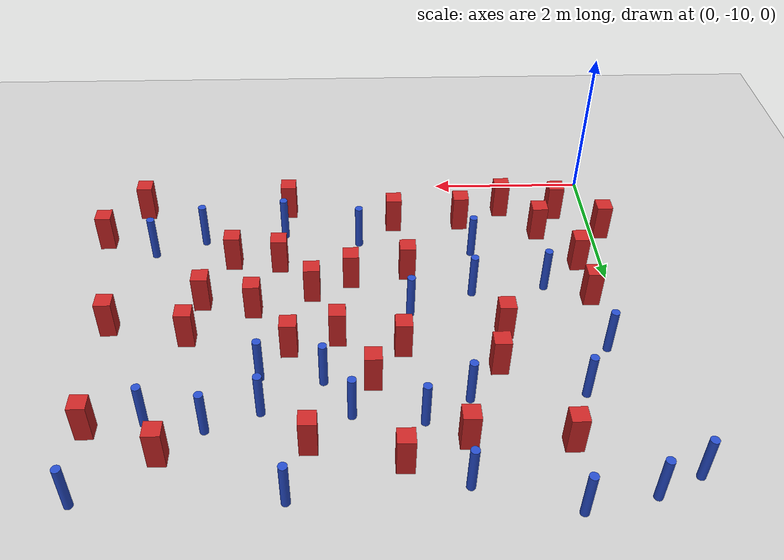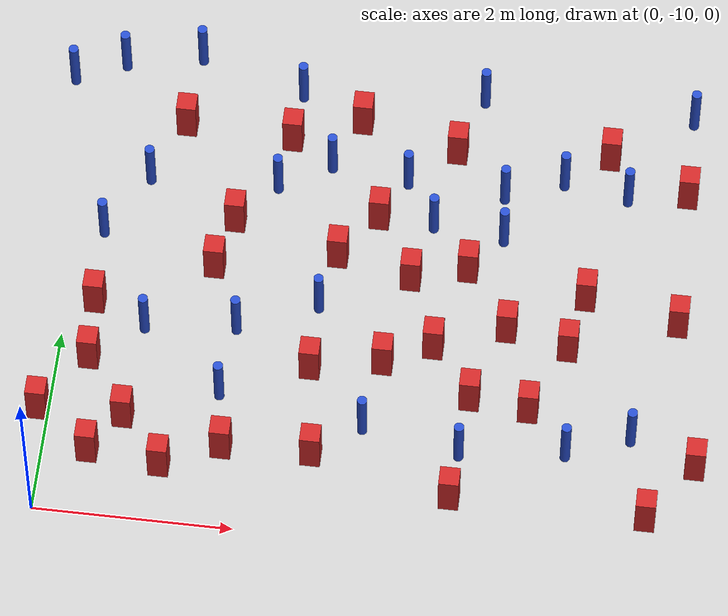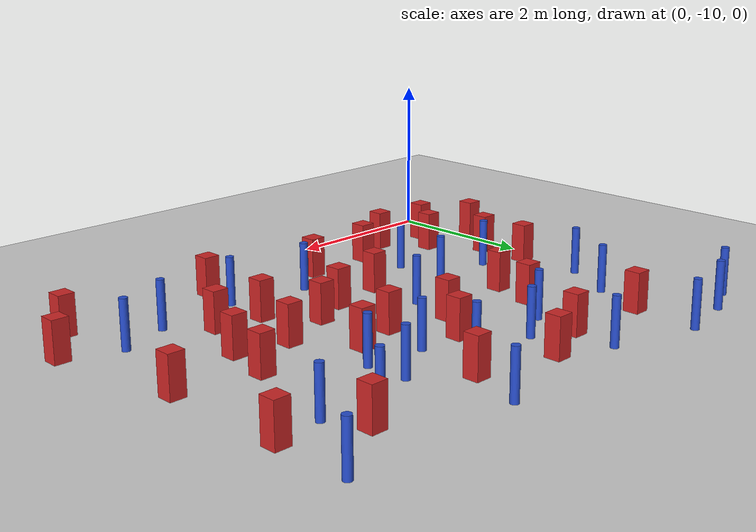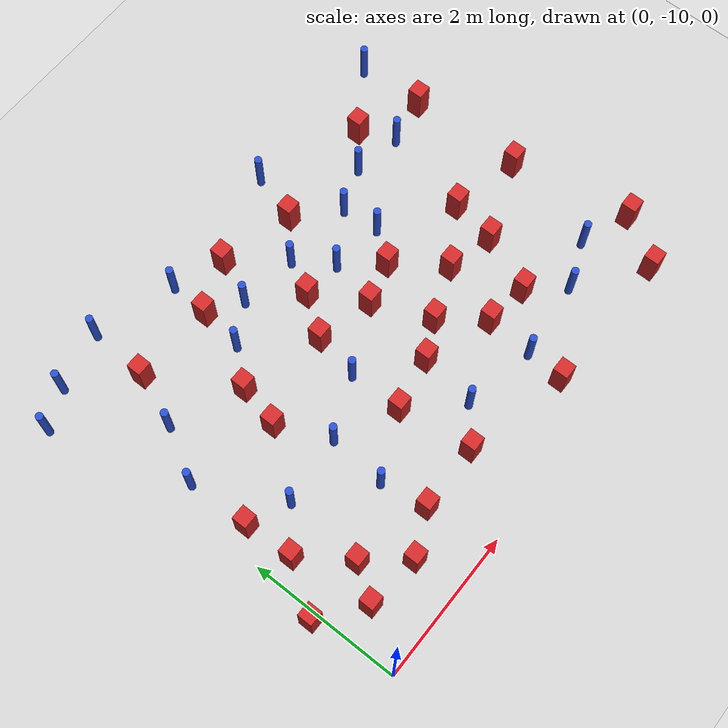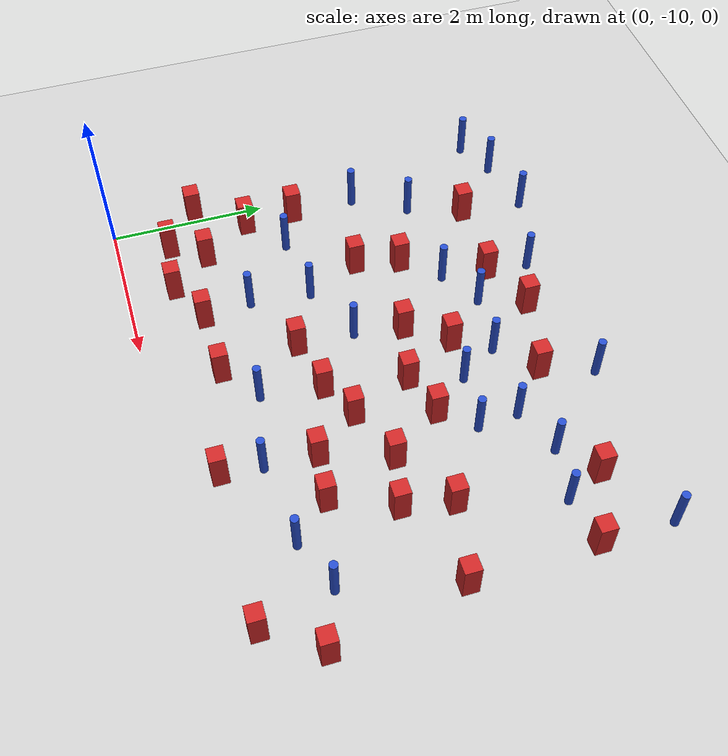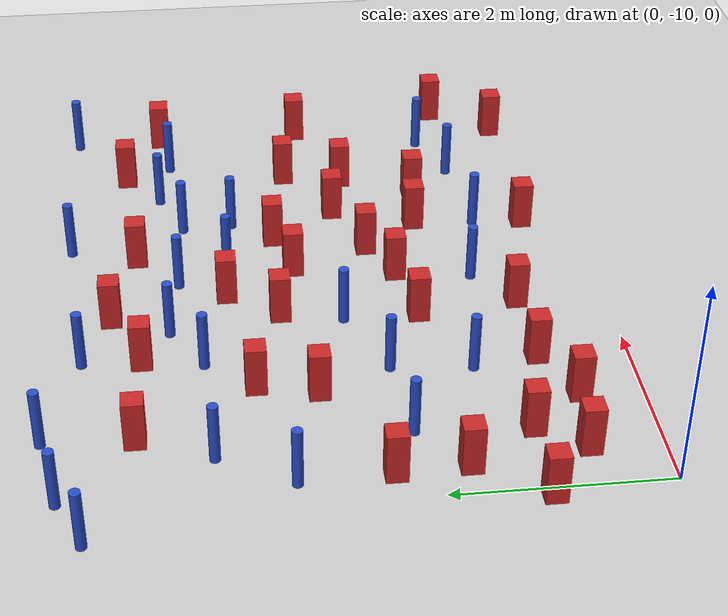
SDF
<sdf version="1.6">
 <world name="default">
  <model name="ground_plane">
   <static>1</static>
   <link name="link">
    <collision name="collision">
     <geometry><plane><normal>0 0 1</normal><size>100 100</size></plane></geometry>
     <surface><friction><ode><mu>100</mu><mu2>50</mu2></ode></friction></surface>
    </collision>
    <visual name="visual">
     <cast_shadows>0</cast_shadows>
     <geometry><plane><normal>0 0 1</normal><size>100 100</size></plane></geometry>
     <material>
      <ambient>1.0 1.0 1.0 1.0</ambient>
      <diffuse>0.8 0.8 0.8 1.0</diffuse>
      <specular>0.01 0.01 0.01 1.000000</specular>
     </material>
    </visual>
   </link>
  </model>
  <model name="pole_obstacle4">
   <static>true</static>
   <pose>0.258165843569 -6.76578638505 2.88873142074e-08 -9.90536689592e-09 4.60219948995e-07 -1.20965994956e-07</pose>
   <link name="link">
    <pose>0 0 0.3 0 -0 0</pose>
    <inertial>
     <mass>1</mass>
     <inertia><ixx>0.145833</ixx><ixy>0</ixy><ixz>0</ixz><iyy>0.145833</iyy><iyz>0</iyz><izz>0.125</izz></inertia>
    </inertial>
    <collision name="collision">
     <geometry><cylinder><radius>0.05</radius><length>.6</length></cylinder></geometry>
    </collision>
    <visual name="visual">
     <geometry><cylinder><radius>0.05</radius><length>.6</length></cylinder></geometry>
     <material>
      <script><name>Gazebo/Blue</name><uri>file://media/materials/scripts/gazebo.material</uri></script>
     </material>
    </visual>
   </link>
  </model>
  <model name="square_post_obstacle3">
   <static>true</static>
   <pose>1.18323897314 -9.39760417314 8.22691968438e-08 7.2212513382e-06 -7.54495500217e-07 2.29674213826e-05</pose>
   <link name="link">
    <pose>0 0 0.25 0 -0 0</pose>
    <inertial>
     <mass>100</mass>
     <inertia>
      <ixx>0.166667</ixx>
      <ixy>0</ixy>
      <ixz>0</ixz>
      <iyy>0.166667</iyy>
      <iyz>0</iyz>
      <izz>0.166667</izz>
     </inertia>
    </inertial>
    <collision name="collision"><geometry><box><size>.2 .2 .5</size></box></geometry></collision>
    <visual name="visual">
     <geometry><box><size>.2 .2 .5</size></box></geometry>
     <material>
      <script><name>Gazebo/Red</name><uri>file://media/materials/scripts/gazebo.material</uri></script>
     </material>
    </visual>
   </link>
  </model>
  <model name="pole_obstacle7">
   <static>true</static>
   <pose>3.56966485649 -6.32187654859 2.88873142074e-08 -9.90536689859e-09 4.60219948989e-07 -1.20965994961e-07</pose>
   <link name="link">
    <pose>0 0 0.3 0 -0 0</pose>
    <inertial>
     <mass>1</mass>
     <inertia><ixx>0.145833</ixx><ixy>0</ixy><ixz>0</ixz><iyy>0.145833</iyy><iyz>0</iyz><izz>0.125</izz></inertia>
    </inertial>
    <collision name="collision">
     <geometry><cylinder><radius>0.05</radius><length>.6</length></cylinder></geometry>
    </collision>
    <visual name="visual">
     <geometry><cylinder><radius>0.05</radius><length>.6</length></cylinder></geometry>
     <material>
      <script><name>Gazebo/Blue</name><uri>file://media/materials/scripts/gazebo.material</uri></script>
     </material>
    </visual>
   </link>
  </model>
  <model name="square_post_obstacle5">
   <static>true</static>
   <pose>5.27767574691 -5.31168446191 8.22691968438e-08 7.2212513382e-06 -7.54495500217e-07 2.29674213826e-05</pose>
   <link name="link">
    <pose>0 0 0.25 0 -0 0</pose>
    <inertial>
     <mass>100</mass>
     <inertia>
      <ixx>0.166667</ixx>
      <ixy>0</ixy>
      <ixz>0</ixz>
      <iyy>0.166667</iyy>
      <iyz>0</iyz>
      <izz>0.166667</izz>
     </inertia>
    </inertial>
    <collision name="collision"><geometry><box><size>.2 .2 .5</size></box></geometry></collision>
    <visual name="visual">
     <geometry><box><size>.2 .2 .5</size></box></geometry>
     <material>
      <script><name>Gazebo/Red</name><uri>file://media/materials/scripts/gazebo.material</uri></script>
     </material>
    </visual>
   </link>
  </model>
  <model name="pole_obstacle12">
   <static>true</static>
   <pose>3.12738423916 -8.74129097688 2.88873142074e-08 -9.90536692318e-09 4.6021994893e-07 -1.20965994988e-07</pose>
   <link name="link">
    <pose>0 0 0.3 0 -0 0</pose>
    <inertial>
     <mass>1</mass>
     <inertia><ixx>0.145833</ixx><ixy>0</ixy><ixz>0</ixz><iyy>0.145833</iyy><iyz>0</iyz><izz>0.125</izz></inertia>
    </inertial>
    <collision name="collision">
     <geometry><cylinder><radius>0.05</radius><length>.6</length></cylinder></geometry>
    </collision>
    <visual name="visual">
     <geometry><cylinder><radius>0.05</radius><length>.6</length></cylinder></geometry>
     <material>
      <script><name>Gazebo/Blue</name><uri>file://media/materials/scripts/gazebo.material</uri></script>
     </material>
    </visual>
   </link>
  </model>
  <model name="square_post_obstacle9">
   <static>true</static>
   <pose>1.56774831799 -6.49441075072 8.22691968438e-08 7.2212513382e-06 -7.54495500217e-07 2.29674213826e-05</pose>
   <link name="link">
    <pose>0 0 0.25 0 -0 0</pose>
    <inertial>
     <mass>100</mass>
     <inertia>
      <ixx>0.166667</ixx>
      <ixy>0</ixy>
      <ixz>0</ixz>
      <iyy>0.166667</iyy>
      <iyz>0</iyz>
      <izz>0.166667</izz>
     </inertia>
    </inertial>
    <collision name="collision"><geometry><box><size>.2 .2 .5</size></box></geometry></collision>
    <visual name="visual">
     <geometry><box><size>.2 .2 .5</size></box></geometry>
     <material>
      <script><name>Gazebo/Red</name><uri>file://media/materials/scripts/gazebo.material</uri></script>
     </material>
    </visual>
   </link>
  </model>
  <model name="square_post_obstacle15">
   <static>true</static>
   <pose>2.64967527114 -6.79463559241 8.22691968438e-08 7.2212513382e-06 -7.54495500217e-07 2.29674213826e-05</pose>
   <link name="link">
    <pose>0 0 0.25 0 -0 0</pose>
    <inertial>
     <mass>100</mass>
     <inertia>
      <ixx>0.166667</ixx>
      <ixy>0</ixy>
      <ixz>0</ixz>
      <iyy>0.166667</iyy>
      <iyz>0</iyz>
      <izz>0.166667</izz>
     </inertia>
    </inertial>
    <collision name="collision"><geometry><box><size>.2 .2 .5</size></box></geometry></collision>
    <visual name="visual">
     <geometry><box><size>.2 .2 .5</size></box></geometry>
     <material>
      <script><name>Gazebo/Red</name><uri>file://media/materials/scripts/gazebo.material</uri></script>
     </material>
    </visual>
   </link>
  </model>
  <model name="pole_obstacle24">
   <static>true</static>
   <pose>0.821740182528 -7.83802844646 2.88873142074e-08 -9.90536689661e-09 4.60219948993e-07 -1.20965994957e-07</pose>
   <link name="link">
    <pose>0 0 0.3 0 -0 0</pose>
    <inertial>
     <mass>1</mass>
     <inertia><ixx>0.145833</ixx><ixy>0</ixy><ixz>0</ixz><iyy>0.145833</iyy><iyz>0</iyz><izz>0.125</izz></inertia>
    </inertial>
    <collision name="collision">
     <geometry><cylinder><radius>0.05</radius><length>.6</length></cylinder></geometry>
    </collision>
    <visual name="visual">
     <geometry><cylinder><radius>0.05</radius><length>.6</length></cylinder></geometry>
     <material>
      <script><name>Gazebo/Blue</name><uri>file://media/materials/scripts/gazebo.material</uri></script>
     </material>
    </visual>
   </link>
  </model>
  <model name="square_post_obstacle25">
   <static>true</static>
   <pose>3.71786999147 -5.41917791613 8.22691968438e-08 7.2212513382e-06 -7.54495500217e-07 2.29674213826e-05</pose>
   <link name="link">
    <pose>0 0 0.25 0 -0 0</pose>
    <inertial>
     <mass>100</mass>
     <inertia>
      <ixx>0.166667</ixx>
      <ixy>0</ixy>
      <ixz>0</ixz>
      <iyy>0.166667</iyy>
      <iyz>0</iyz>
      <izz>0.166667</izz>
     </inertia>
    </inertial>
    <collision name="collision"><geometry><box><size>.2 .2 .5</size></box></geometry></collision>
    <visual name="visual">
     <geometry><box><size>.2 .2 .5</size></box></geometry>
     <material>
      <script><name>Gazebo/Red</name><uri>file://media/materials/scripts/gazebo.material</uri></script>
     </material>
    </visual>
   </link>
  </model>
  <model name="pole_obstacle33">
   <static>true</static>
   <pose>0.201932836054 -4.73587450719 2.88873142074e-08 -9.90536689491e-09 4.60219948997e-07 -1.20965994955e-07</pose>
   <link name="link">
    <pose>0 0 0.3 0 -0 0</pose>
    <inertial>
     <mass>1</mass>
     <inertia><ixx>0.145833</ixx><ixy>0</ixy><ixz>0</ixz><iyy>0.145833</iyy><iyz>0</iyz><izz>0.125</izz></inertia>
    </inertial>
    <collision name="collision">
     <geometry><cylinder><radius>0.05</radius><length>.6</length></cylinder></geometry>
    </collision>
    <visual name="visual">
     <geometry><cylinder><radius>0.05</radius><length>.6</length></cylinder></geometry>
     <material>
      <script><name>Gazebo/Blue</name><uri>file://media/materials/scripts/gazebo.material</uri></script>
     </material>
    </visual>
   </link>
  </model>
  <model name="square_post_obstacle31">
   <static>true</static>
   <pose>3.97389709068 -6.81319717707 8.22691968438e-08 7.2212513382e-06 -7.54495500217e-07 2.29674213826e-05</pose>
   <link name="link">
    <pose>0 0 0.25 0 -0 0</pose>
    <inertial>
     <mass>100</mass>
     <inertia>
      <ixx>0.166667</ixx>
      <ixy>0</ixy>
      <ixz>0</ixz>
      <iyy>0.166667</iyy>
      <iyz>0</iyz>
      <izz>0.166667</izz>
     </inertia>
    </inertial>
    <collision name="collision"><geometry><box><size>.2 .2 .5</size></box></geometry></collision>
    <visual name="visual">
     <geometry><box><size>.2 .2 .5</size></box></geometry>
     <material>
      <script><name>Gazebo/Red</name><uri>file://media/materials/scripts/gazebo.material</uri></script>
     </material>
    </visual>
   </link>
  </model>
  <model name="pole_obstacle48">
   <static>true</static>
   <pose>5.49834808077 -5.77658856711 2.88873142074e-08 -9.90536690842e-09 4.60219948965e-07 -1.20965994976e-07</pose>
   <link name="link">
    <pose>0 0 0.3 0 -0 0</pose>
    <inertial>
     <mass>1</mass>
     <inertia><ixx>0.145833</ixx><ixy>0</ixy><ixz>0</ixz><iyy>0.145833</iyy><iyz>0</iyz><izz>0.125</izz></inertia>
    </inertial>
    <collision name="collision">
     <geometry><cylinder><radius>0.05</radius><length>.6</length></cylinder></geometry>
    </collision>
    <visual name="visual">
     <geometry><cylinder><radius>0.05</radius><length>.6</length></cylinder></geometry>
     <material>
      <script><name>Gazebo/Blue</name><uri>file://media/materials/scripts/gazebo.material</uri></script>
     </material>
    </visual>
   </link>
  </model>
  <model name="pole_obstacle54">
   <static>true</static>
   <pose>2.06412426511 -4.90041992748 2.88873142074e-08 -9.90536689859e-09 4.60219948989e-07 -1.20965994961e-07</pose>
   <link name="link">
    <pose>0 0 0.3 0 -0 0</pose>
    <inertial>
     <mass>1</mass>
     <inertia><ixx>0.145833</ixx><ixy>0</ixy><ixz>0</ixz><iyy>0.145833</iyy><iyz>0</iyz><izz>0.125</izz></inertia>
    </inertial>
    <collision name="collision">
     <geometry><cylinder><radius>0.05</radius><length>.6</length></cylinder></geometry>
    </collision>
    <visual name="visual">
     <geometry><cylinder><radius>0.05</radius><length>.6</length></cylinder></geometry>
     <material>
      <script><name>Gazebo/Blue</name><uri>file://media/materials/scripts/gazebo.material</uri></script>
     </material>
    </visual>
   </link>
  </model>
  <model name="pole_obstacle65">
   <static>true</static>
   <pose>3.93004176277 -4.75464355111 2.88873142074e-08 -9.90536689859e-09 4.60219948989e-07 -1.20965994961e-07</pose>
   <link name="link">
    <pose>0 0 0.3 0 -0 0</pose>
    <inertial>
     <mass>1</mass>
     <inertia><ixx>0.145833</ixx><ixy>0</ixy><ixz>0</ixz><iyy>0.145833</iyy><iyz>0</iyz><izz>0.125</izz></inertia>
    </inertial>
    <collision name="collision">
     <geometry><cylinder><radius>0.05</radius><length>.6</length></cylinder></geometry>
    </collision>
    <visual name="visual">
     <geometry><cylinder><radius>0.05</radius><length>.6</length></cylinder></geometry>
     <material>
      <script><name>Gazebo/Blue</name><uri>file://media/materials/scripts/gazebo.material</uri></script>
     </material>
    </visual>
   </link>
  </model>
  <model name="pole_obstacle69">
   <static>true</static>
   <pose>0.977220879343 -4.57353381583 2.88873142074e-08 -9.90536689421e-09 4.60219948999e-07 -1.20965994953e-07</pose>
   <link name="link">
    <pose>0 0 0.3 0 -0 0</pose>
    <inertial>
     <mass>1</mass>
     <inertia><ixx>0.145833</ixx><ixy>0</ixy><ixz>0</ixz><iyy>0.145833</iyy><iyz>0</iyz><izz>0.125</izz></inertia>
    </inertial>
    <collision name="collision">
     <geometry><cylinder><radius>0.05</radius><length>.6</length></cylinder></geometry>
    </collision>
    <visual name="visual">
     <geometry><cylinder><radius>0.05</radius><length>.6</length></cylinder></geometry>
     <material>
      <script><name>Gazebo/Blue</name><uri>file://media/materials/scripts/gazebo.material</uri></script>
     </material>
    </visual>
   </link>
  </model>
  <model name="square_post_obstacle65">
   <static>true</static>
   <pose>2.02727870137 -5.45863996882 8.22691968438e-08 7.22125133819e-06 -7.54495500217e-07 2.29674213826e-05</pose>
   <link name="link">
    <pose>0 0 0.25 0 -0 0</pose>
    <inertial>
     <mass>100</mass>
     <inertia>
      <ixx>0.166667</ixx>
      <ixy>0</ixy>
      <ixz>0</ixz>
      <iyy>0.166667</iyy>
      <iyz>0</iyz>
      <izz>0.166667</izz>
     </inertia>
    </inertial>
    <collision name="collision"><geometry><box><size>.2 .2 .5</size></box></geometry></collision>
    <visual name="visual">
     <geometry><box><size>.2 .2 .5</size></box></geometry>
     <material>
      <script><name>Gazebo/Red</name><uri>file://media/materials/scripts/gazebo.material</uri></script>
     </material>
    </visual>
   </link>
  </model>
  <model name="pole_obstacle81">
   <static>true</static>
   <pose>5.78248510713 -8.56671844168 2.88873142074e-08 -9.9053668967e-09 4.60219948993e-07 -1.20965994957e-07</pose>
   <link name="link">
    <pose>0 0 0.3 0 -0 0</pose>
    <inertial>
     <mass>1</mass>
     <inertia><ixx>0.145833</ixx><ixy>0</ixy><ixz>0</ixz><iyy>0.145833</iyy><iyz>0</iyz><izz>0.125</izz></inertia>
    </inertial>
    <collision name="collision">
     <geometry><cylinder><radius>0.05</radius><length>.6</length></cylinder></geometry>
    </collision>
    <visual name="visual">
     <geometry><cylinder><radius>0.05</radius><length>.6</length></cylinder></geometry>
     <material>
      <script><name>Gazebo/Blue</name><uri>file://media/materials/scripts/gazebo.material</uri></script>
     </material>
    </visual>
   </link>
  </model>
  <model name="square_post_obstacle70">
   <static>true</static>
   <pose>1.76594362128 -9.12602384641 8.22691968438e-08 7.2212513382e-06 -7.54495500217e-07 2.29674213826e-05</pose>
   <link name="link">
    <pose>0 0 0.25 0 -0 0</pose>
    <inertial>
     <mass>100</mass>
     <inertia>
      <ixx>0.166667</ixx>
      <ixy>0</ixy>
      <ixz>0</ixz>
      <iyy>0.166667</iyy>
      <iyz>0</iyz>
      <izz>0.166667</izz>
     </inertia>
    </inertial>
    <collision name="collision"><geometry><box><size>.2 .2 .5</size></box></geometry></collision>
    <visual name="visual">
     <geometry><box><size>.2 .2 .5</size></box></geometry>
     <material>
      <script><name>Gazebo/Red</name><uri>file://media/materials/scripts/gazebo.material</uri></script>
     </material>
    </visual>
   </link>
  </model>
  <model name="square_post_obstacle78">
   <static>true</static>
   <pose>4.14839315322 -8.29693898589 8.22691968438e-08 7.2212513382e-06 -7.54495500217e-07 2.29674213826e-05</pose>
   <link name="link">
    <pose>0 0 0.25 0 -0 0</pose>
    <inertial>
     <mass>100</mass>
     <inertia>
      <ixx>0.166667</ixx>
      <ixy>0</ixy>
      <ixz>0</ixz>
      <iyy>0.166667</iyy>
      <iyz>0</iyz>
      <izz>0.166667</izz>
     </inertia>
    </inertial>
    <collision name="collision"><geometry><box><size>.2 .2 .5</size></box></geometry></collision>
    <visual name="visual">
     <geometry><box><size>.2 .2 .5</size></box></geometry>
     <material>
      <script><name>Gazebo/Red</name><uri>file://media/materials/scripts/gazebo.material</uri></script>
     </material>
    </visual>
   </link>
  </model>
  <model name="square_post_obstacle80">
   <static>true</static>
   <pose>3.24236224813 -7.98722034212 8.22691968438e-08 7.2212513382e-06 -7.54495500217e-07 2.29674213826e-05</pose>
   <link name="link">
    <pose>0 0 0.25 0 -0 0</pose>
    <inertial>
     <mass>100</mass>
     <inertia>
      <ixx>0.166667</ixx>
      <ixy>0</ixy>
      <ixz>0</ixz>
      <iyy>0.166667</iyy>
      <iyz>0</iyz>
      <izz>0.166667</izz>
     </inertia>
    </inertial>
    <collision name="collision"><geometry><box><size>.2 .2 .5</size></box></geometry></collision>
    <visual name="visual">
     <geometry><box><size>.2 .2 .5</size></box></geometry>
     <material>
      <script><name>Gazebo/Red</name><uri>file://media/materials/scripts/gazebo.material</uri></script>
     </material>
    </visual>
   </link>
  </model>
  <model name="square_post_obstacle85">
   <static>true</static>
   <pose>-0.0994437773608 -8.8917714208 8.22691968438e-08 7.22125133819e-06 -7.54495500217e-07 2.29674213826e-05</pose>
   <link name="link">
    <pose>0 0 0.25 0 -0 0</pose>
    <inertial>
     <mass>100</mass>
     <inertia>
      <ixx>0.166667</ixx>
      <ixy>0</ixy>
      <ixz>0</ixz>
      <iyy>0.166667</iyy>
      <iyz>0</iyz>
      <izz>0.166667</izz>
     </inertia>
    </inertial>
    <collision name="collision"><geometry><box><size>.2 .2 .5</size></box></geometry></collision>
    <visual name="visual">
     <geometry><box><size>.2 .2 .5</size></box></geometry>
     <material>
      <script><name>Gazebo/Red</name><uri>file://media/materials/scripts/gazebo.material</uri></script>
     </material>
    </visual>
   </link>
  </model>
  <model name="pole_obstacle93">
   <static>true</static>
   <pose>4.83847030464 -5.66097397467 2.88873142074e-08 -9.90536690842e-09 4.60219948965e-07 -1.20965994976e-07</pose>
   <link name="link">
    <pose>0 0 0.3 0 -0 0</pose>
    <inertial>
     <mass>1</mass>
     <inertia><ixx>0.145833</ixx><ixy>0</ixy><ixz>0</ixz><iyy>0.145833</iyy><iyz>0</iyz><izz>0.125</izz></inertia>
    </inertial>
    <collision name="collision">
     <geometry><cylinder><radius>0.05</radius><length>.6</length></cylinder></geometry>
    </collision>
    <visual name="visual">
     <geometry><cylinder><radius>0.05</radius><length>.6</length></cylinder></geometry>
     <material>
      <script><name>Gazebo/Blue</name><uri>file://media/materials/scripts/gazebo.material</uri></script>
     </material>
    </visual>
   </link>
  </model>
  <model name="pole_obstacle95">
   <static>true</static>
   <pose>6.08729764255 -4.77026511333 2.88873142074e-08 -9.90536690842e-09 4.60219948965e-07 -1.20965994976e-07</pose>
   <link name="link">
    <pose>0 0 0.3 0 -0 0</pose>
    <inertial>
     <mass>1</mass>
     <inertia><ixx>0.145833</ixx><ixy>0</ixy><ixz>0</ixz><iyy>0.145833</iyy><iyz>0</iyz><izz>0.125</izz></inertia>
    </inertial>
    <collision name="collision">
     <geometry><cylinder><radius>0.05</radius><length>.6</length></cylinder></geometry>
    </collision>
    <visual name="visual">
     <geometry><cylinder><radius>0.05</radius><length>.6</length></cylinder></geometry>
     <material>
      <script><name>Gazebo/Blue</name><uri>file://media/materials/scripts/gazebo.material</uri></script>
     </material>
    </visual>
   </link>
  </model>
  <model name="pole_obstacle97">
   <static>true</static>
   <pose>4.29264258816 -6.39985280666 2.88873142074e-08 -9.90536690842e-09 4.60219948965e-07 -1.20965994976e-07</pose>
   <link name="link">
    <pose>0 0 0.3 0 -0 0</pose>
    <inertial>
     <mass>1</mass>
     <inertia><ixx>0.145833</ixx><ixy>0</ixy><ixz>0</ixz><iyy>0.145833</iyy><iyz>0</iyz><izz>0.125</izz></inertia>
    </inertial>
    <collision name="collision">
     <geometry><cylinder><radius>0.05</radius><length>.6</length></cylinder></geometry>
    </collision>
    <visual name="visual">
     <geometry><cylinder><radius>0.05</radius><length>.6</length></cylinder></geometry>
     <material>
      <script><name>Gazebo/Blue</name><uri>file://media/materials/scripts/gazebo.material</uri></script>
     </material>
    </visual>
   </link>
  </model>
  <model name="pole_obstacle109">
   <static>true</static>
   <pose>2.52933595209 -7.3986799206 2.88873142074e-08 -9.90536689859e-09 4.60219948989e-07 -1.20965994961e-07</pose>
   <link name="link">
    <pose>0 0 0.3 0 -0 0</pose>
    <inertial>
     <mass>1</mass>
     <inertia><ixx>0.145833</ixx><ixy>0</ixy><ixz>0</ixz><iyy>0.145833</iyy><iyz>0</iyz><izz>0.125</izz></inertia>
    </inertial>
    <collision name="collision">
     <geometry><cylinder><radius>0.05</radius><length>.6</length></cylinder></geometry>
    </collision>
    <visual name="visual">
     <geometry><cylinder><radius>0.05</radius><length>.6</length></cylinder></geometry>
     <material>
      <script><name>Gazebo/Blue</name><uri>file://media/materials/scripts/gazebo.material</uri></script>
     </material>
    </visual>
   </link>
  </model>
  <model name="square_post_obstacle103">
   <static>true</static>
   <pose>6.1349526741 -7.20706647186 8.22691968438e-08 7.2212513382e-06 -7.54495500217e-07 2.29674213826e-05</pose>
   <link name="link">
    <pose>0 0 0.25 0 -0 0</pose>
    <inertial>
     <mass>100</mass>
     <inertia>
      <ixx>0.166667</ixx>
      <ixy>0</ixy>
      <ixz>0</ixz>
      <iyy>0.166667</iyy>
      <iyz>0</iyz>
      <izz>0.166667</izz>
     </inertia>
    </inertial>
    <collision name="collision"><geometry><box><size>.2 .2 .5</size></box></geometry></collision>
    <visual name="visual">
     <geometry><box><size>.2 .2 .5</size></box></geometry>
     <material>
      <script><name>Gazebo/Red</name><uri>file://media/materials/scripts/gazebo.material</uri></script>
     </material>
    </visual>
   </link>
  </model>
  <model name="pole_obstacle116">
   <static>true</static>
   <pose>1.94506822743 -6.03640967678 2.88873142074e-08 -9.90536689852e-09 4.60219948989e-07 -1.2096599496e-07</pose>
   <link name="link">
    <pose>0 0 0.3 0 -0 0</pose>
    <inertial>
     <mass>1</mass>
     <inertia><ixx>0.145833</ixx><ixy>0</ixy><ixz>0</ixz><iyy>0.145833</iyy><iyz>0</iyz><izz>0.125</izz></inertia>
    </inertial>
    <collision name="collision">
     <geometry><cylinder><radius>0.05</radius><length>.6</length></cylinder></geometry>
    </collision>
    <visual name="visual">
     <geometry><cylinder><radius>0.05</radius><length>.6</length></cylinder></geometry>
     <material>
      <script><name>Gazebo/Blue</name><uri>file://media/materials/scripts/gazebo.material</uri></script>
     </material>
    </visual>
   </link>
  </model>
  <model name="pole_obstacle118">
   <static>true</static>
   <pose>0.642095071675 -6.08358443852 2.88873142074e-08 -9.90536689661e-09 4.60219948993e-07 -1.20965994957e-07</pose>
   <link name="link">
    <pose>0 0 0.3 0 -0 0</pose>
    <inertial>
     <mass>1</mass>
     <inertia><ixx>0.145833</ixx><ixy>0</ixy><ixz>0</ixz><iyy>0.145833</iyy><iyz>0</iyz><izz>0.125</izz></inertia>
    </inertial>
    <collision name="collision">
     <geometry><cylinder><radius>0.05</radius><length>.6</length></cylinder></geometry>
    </collision>
    <visual name="visual">
     <geometry><cylinder><radius>0.05</radius><length>.6</length></cylinder></geometry>
     <material>
      <script><name>Gazebo/Blue</name><uri>file://media/materials/scripts/gazebo.material</uri></script>
     </material>
    </visual>
   </link>
  </model>
  <model name="square_post_obstacle125">
   <static>true</static>
   <pose>2.65856451985 -9.1048607819 8.22691968438e-08 7.22125133819e-06 -7.54495500217e-07 2.29674213826e-05</pose>
   <link name="link">
    <pose>0 0 0.25 0 -0 0</pose>
    <inertial>
     <mass>100</mass>
     <inertia>
      <ixx>0.166667</ixx>
      <ixy>0</ixy>
      <ixz>0</ixz>
      <iyy>0.166667</iyy>
      <iyz>0</iyz>
      <izz>0.166667</izz>
     </inertia>
    </inertial>
    <collision name="collision"><geometry><box><size>.2 .2 .5</size></box></geometry></collision>
    <visual name="visual">
     <geometry><box><size>.2 .2 .5</size></box></geometry>
     <material>
      <script><name>Gazebo/Red</name><uri>file://media/materials/scripts/gazebo.material</uri></script>
     </material>
    </visual>
   </link>
  </model>
  <model name="square_post_obstacle126">
   <static>true</static>
   <pose>3.01374309312 -6.29353346831 8.22691968438e-08 7.22125133819e-06 -7.54495500217e-07 2.29674213826e-05</pose>
   <link name="link">
    <pose>0 0 0.25 0 -0 0</pose>
    <inertial>
     <mass>100</mass>
     <inertia>
      <ixx>0.166667</ixx>
      <ixy>0</ixy>
      <ixz>0</ixz>
      <iyy>0.166667</iyy>
      <iyz>0</iyz>
      <izz>0.166667</izz>
     </inertia>
    </inertial>
    <collision name="collision"><geometry><box><size>.2 .2 .5</size></box></geometry></collision>
    <visual name="visual">
     <geometry><box><size>.2 .2 .5</size></box></geometry>
     <material>
      <script><name>Gazebo/Red</name><uri>file://media/materials/scripts/gazebo.material</uri></script>
     </material>
    </visual>
   </link>
  </model>
  <model name="square_post_obstacle132">
   <static>true</static>
   <pose>0.322460825541 -8.25888351649 8.22691968438e-08 7.2212513382e-06 -7.54495500217e-07 2.29674213826e-05</pose>
   <link name="link">
    <pose>0 0 0.25 0 -0 0</pose>
    <inertial>
     <mass>100</mass>
     <inertia>
      <ixx>0.166667</ixx>
      <ixy>0</ixy>
      <ixz>0</ixz>
      <iyy>0.166667</iyy>
      <iyz>0</iyz>
      <izz>0.166667</izz>
     </inertia>
    </inertial>
    <collision name="collision"><geometry><box><size>.2 .2 .5</size></box></geometry></collision>
    <visual name="visual">
     <geometry><box><size>.2 .2 .5</size></box></geometry>
     <material>
      <script><name>Gazebo/Red</name><uri>file://media/materials/scripts/gazebo.material</uri></script>
     </material>
    </visual>
   </link>
  </model>
  <model name="pole_obstacle136">
   <static>true</static>
   <pose>1.66689477773 -8.5169670554 2.88873142074e-08 -9.90536690474e-09 4.60219948974e-07 -1.2096599497e-07</pose>
   <link name="link">
    <pose>0 0 0.3 0 -0 0</pose>
    <inertial>
     <mass>1</mass>
     <inertia><ixx>0.145833</ixx><ixy>0</ixy><ixz>0</ixz><iyy>0.145833</iyy><iyz>0</iyz><izz>0.125</izz></inertia>
    </inertial>
    <collision name="collision">
     <geometry><cylinder><radius>0.05</radius><length>.6</length></cylinder></geometry>
    </collision>
    <visual name="visual">
     <geometry><cylinder><radius>0.05</radius><length>.6</length></cylinder></geometry>
     <material>
      <script><name>Gazebo/Blue</name><uri>file://media/materials/scripts/gazebo.material</uri></script>
     </material>
    </visual>
   </link>
  </model>
  <model name="pole_obstacle140">
   <static>true</static>
   <pose>4.25076910204 -5.89413783788 2.88873142074e-08 -9.90536690842e-09 4.60219948965e-07 -1.20965994976e-07</pose>
   <link name="link">
    <pose>0 0 0.3 0 -0 0</pose>
    <inertial>
     <mass>1</mass>
     <inertia><ixx>0.145833</ixx><ixy>0</ixy><ixz>0</ixz><iyy>0.145833</iyy><iyz>0</iyz><izz>0.125</izz></inertia>
    </inertial>
    <collision name="collision">
     <geometry><cylinder><radius>0.05</radius><length>.6</length></cylinder></geometry>
    </collision>
    <visual name="visual">
     <geometry><cylinder><radius>0.05</radius><length>.6</length></cylinder></geometry>
     <material>
      <script><name>Gazebo/Blue</name><uri>file://media/materials/scripts/gazebo.material</uri></script>
     </material>
    </visual>
   </link>
  </model>
  <model name="square_post_obstacle136">
   <static>true</static>
   <pose>4.0687676821 -9.43047107392 8.22691968438e-08 7.22125133819e-06 -7.54495500217e-07 2.29674213826e-05</pose>
   <link name="link">
    <pose>0 0 0.25 0 -0 0</pose>
    <inertial>
     <mass>100</mass>
     <inertia>
      <ixx>0.166667</ixx>
      <ixy>0</ixy>
      <ixz>0</ixz>
      <iyy>0.166667</iyy>
      <iyz>0</iyz>
      <izz>0.166667</izz>
     </inertia>
    </inertial>
    <collision name="collision"><geometry><box><size>.2 .2 .5</size></box></geometry></collision>
    <visual name="visual">
     <geometry><box><size>.2 .2 .5</size></box></geometry>
     <material>
      <script><name>Gazebo/Red</name><uri>file://media/materials/scripts/gazebo.material</uri></script>
     </material>
    </visual>
   </link>
  </model>
  <model name="square_post_obstacle139">
   <static>true</static>
   <pose>3.72480539066 -7.74724934188 8.22691968438e-08 7.2212513382e-06 -7.54495500217e-07 2.29674213826e-05</pose>
   <link name="link">
    <pose>0 0 0.25 0 -0 0</pose>
    <inertial>
     <mass>100</mass>
     <inertia>
      <ixx>0.166667</ixx>
      <ixy>0</ixy>
      <ixz>0</ixz>
      <iyy>0.166667</iyy>
      <iyz>0</iyz>
      <izz>0.166667</izz>
     </inertia>
    </inertial>
    <collision name="collision"><geometry><box><size>.2 .2 .5</size></box></geometry></collision>
    <visual name="visual">
     <geometry><box><size>.2 .2 .5</size></box></geometry>
     <material>
      <script><name>Gazebo/Red</name><uri>file://media/materials/scripts/gazebo.material</uri></script>
     </material>
    </visual>
   </link>
  </model>
  <model name="pole_obstacle148">
   <static>true</static>
   <pose>5.15485827563 -8.81208544478 2.88873142074e-08 -9.9053668967e-09 4.60219948993e-07 -1.20965994957e-07</pose>
   <link name="link">
    <pose>0 0 0.3 0 -0 0</pose>
    <inertial>
     <mass>1</mass>
     <inertia><ixx>0.145833</ixx><ixy>0</ixy><ixz>0</ixz><iyy>0.145833</iyy><iyz>0</iyz><izz>0.125</izz></inertia>
    </inertial>
    <collision name="collision">
     <geometry><cylinder><radius>0.05</radius><length>.6</length></cylinder></geometry>
    </collision>
    <visual name="visual">
     <geometry><cylinder><radius>0.05</radius><length>.6</length></cylinder></geometry>
     <material>
      <script><name>Gazebo/Blue</name><uri>file://media/materials/scripts/gazebo.material</uri></script>
     </material>
    </visual>
   </link>
  </model>
  <model name="pole_obstacle149">
   <static>true</static>
   <pose>1.73872814829 -7.74606213514 2.88873142074e-08 -9.90536689852e-09 4.60219948989e-07 -1.2096599496e-07</pose>
   <link name="link">
    <pose>0 0 0.3 0 -0 0</pose>
    <inertial>
     <mass>1</mass>
     <inertia><ixx>0.145833</ixx><ixy>0</ixy><ixz>0</ixz><iyy>0.145833</iyy><iyz>0</iyz><izz>0.125</izz></inertia>
    </inertial>
    <collision name="collision">
     <geometry><cylinder><radius>0.05</radius><length>.6</length></cylinder></geometry>
    </collision>
    <visual name="visual">
     <geometry><cylinder><radius>0.05</radius><length>.6</length></cylinder></geometry>
     <material>
      <script><name>Gazebo/Blue</name><uri>file://media/materials/scripts/gazebo.material</uri></script>
     </material>
    </visual>
   </link>
  </model>
  <model name="square_post_obstacle142">
   <static>true</static>
   <pose>0.927425518588 -5.40101833418 8.22691968438e-08 7.2212513382e-06 -7.54495500217e-07 2.29674213826e-05</pose>
   <link name="link">
    <pose>0 0 0.25 0 -0 0</pose>
    <inertial>
     <mass>100</mass>
     <inertia>
      <ixx>0.166667</ixx>
      <ixy>0</ixy>
      <ixz>0</ixz>
      <iyy>0.166667</iyy>
      <iyz>0</iyz>
      <izz>0.166667</izz>
     </inertia>
    </inertial>
    <collision name="collision"><geometry><box><size>.2 .2 .5</size></box></geometry></collision>
    <visual name="visual">
     <geometry><box><size>.2 .2 .5</size></box></geometry>
     <material>
      <script><name>Gazebo/Red</name><uri>file://media/materials/scripts/gazebo.material</uri></script>
     </material>
    </visual>
   </link>
  </model>
  <model name="square_post_obstacle146">
   <static>true</static>
   <pose>5.06438201518 -7.61676682553 8.22691968438e-08 7.2212513382e-06 -7.54495500217e-07 2.29674213826e-05</pose>
   <link name="link">
    <pose>0 0 0.25 0 -0 0</pose>
    <inertial>
     <mass>100</mass>
     <inertia>
      <ixx>0.166667</ixx>
      <ixy>0</ixy>
      <ixz>0</ixz>
      <iyy>0.166667</iyy>
      <iyz>0</iyz>
      <izz>0.166667</izz>
     </inertia>
    </inertial>
    <collision name="collision"><geometry><box><size>.2 .2 .5</size></box></geometry></collision>
    <visual name="visual">
     <geometry><box><size>.2 .2 .5</size></box></geometry>
     <material>
      <script><name>Gazebo/Red</name><uri>file://media/materials/scripts/gazebo.material</uri></script>
     </material>
    </visual>
   </link>
  </model>
  <model name="square_post_obstacle151">
   <static>true</static>
   <pose>2.7157439911 -5.17041640803 8.22691968438e-08 7.2212513382e-06 -7.54495500217e-07 2.29674213826e-05</pose>
   <link name="link">
    <pose>0 0 0.25 0 -0 0</pose>
    <inertial>
     <mass>100</mass>
     <inertia>
      <ixx>0.166667</ixx>
      <ixy>0</ixy>
      <ixz>0</ixz>
      <iyy>0.166667</iyy>
      <iyz>0</iyz>
      <izz>0.166667</izz>
     </inertia>
    </inertial>
    <collision name="collision"><geometry><box><size>.2 .2 .5</size></box></geometry></collision>
    <visual name="visual">
     <geometry><box><size>.2 .2 .5</size></box></geometry>
     <material>
      <script><name>Gazebo/Red</name><uri>file://media/materials/scripts/gazebo.material</uri></script>
     </material>
    </visual>
   </link>
  </model>
  <model name="pole_obstacle160">
   <static>true</static>
   <pose>3.25515368768 -5.83073312186 2.88873142074e-08 -9.90536689859e-09 4.60219948989e-07 -1.20965994961e-07</pose>
   <link name="link">
    <pose>0 0 0.3 0 -0 0</pose>
    <inertial>
     <mass>1</mass>
     <inertia><ixx>0.145833</ixx><ixy>0</ixy><ixz>0</ixz><iyy>0.145833</iyy><iyz>0</iyz><izz>0.125</izz></inertia>
    </inertial>
    <collision name="collision">
     <geometry><cylinder><radius>0.05</radius><length>.6</length></cylinder></geometry>
    </collision>
    <visual name="visual">
     <geometry><cylinder><radius>0.05</radius><length>.6</length></cylinder></geometry>
     <material>
      <script><name>Gazebo/Blue</name><uri>file://media/materials/scripts/gazebo.material</uri></script>
     </material>
    </visual>
   </link>
  </model>
  <model name="square_post_obstacle155">
   <static>true</static>
   <pose>5.18587756092 -7.00854474139 8.22691968438e-08 7.22125133819e-06 -7.54495500217e-07 2.29674213826e-05</pose>
   <link name="link">
    <pose>0 0 0.25 0 -0 0</pose>
    <inertial>
     <mass>100</mass>
     <inertia>
      <ixx>0.166667</ixx>
      <ixy>0</ixy>
      <ixz>0</ixz>
      <iyy>0.166667</iyy>
      <iyz>0</iyz>
      <izz>0.166667</izz>
     </inertia>
    </inertial>
    <collision name="collision"><geometry><box><size>.2 .2 .5</size></box></geometry></collision>
    <visual name="visual">
     <geometry><box><size>.2 .2 .5</size></box></geometry>
     <material>
      <script><name>Gazebo/Red</name><uri>file://media/materials/scripts/gazebo.material</uri></script>
     </material>
    </visual>
   </link>
  </model>
  <model name="square_post_obstacle157">
   <static>true</static>
   <pose>0.751619681205 -8.88951896313 8.22691968438e-08 7.22125133819e-06 -7.54495500217e-07 2.29674213826e-05</pose>
   <link name="link">
    <pose>0 0 0.25 0 -0 0</pose>
    <inertial>
     <mass>100</mass>
     <inertia>
      <ixx>0.166667</ixx>
      <ixy>0</ixy>
      <ixz>0</ixz>
      <iyy>0.166667</iyy>
      <iyz>0</iyz>
      <izz>0.166667</izz>
     </inertia>
    </inertial>
    <collision name="collision"><geometry><box><size>.2 .2 .5</size></box></geometry></collision>
    <visual name="visual">
     <geometry><box><size>.2 .2 .5</size></box></geometry>
     <material>
      <script><name>Gazebo/Red</name><uri>file://media/materials/scripts/gazebo.material</uri></script>
     </material>
    </visual>
   </link>
  </model>
  <model name="square_post_obstacle159">
   <static>true</static>
   <pose>0.288750291195 -7.60520864366 8.22691968438e-08 7.2212513382e-06 -7.54495500217e-07 2.29674213826e-05</pose>
   <link name="link">
    <pose>0 0 0.25 0 -0 0</pose>
    <inertial>
     <mass>100</mass>
     <inertia>
      <ixx>0.166667</ixx>
      <ixy>0</ixy>
      <ixz>0</ixz>
      <iyy>0.166667</iyy>
      <iyz>0</iyz>
      <izz>0.166667</izz>
     </inertia>
    </inertial>
    <collision name="collision"><geometry><box><size>.2 .2 .5</size></box></geometry></collision>
    <visual name="visual">
     <geometry><box><size>.2 .2 .5</size></box></geometry>
     <material>
      <script><name>Gazebo/Red</name><uri>file://media/materials/scripts/gazebo.material</uri></script>
     </material>
    </visual>
   </link>
  </model>
  <model name="square_post_obstacle168">
   <static>true</static>
   <pose>6.0050628091 -9.44818628498 8.22691968438e-08 7.2212513382e-06 -7.54495500217e-07 2.29674213826e-05</pose>
   <link name="link">
    <pose>0 0 0.25 0 -0 0</pose>
    <inertial>
     <mass>100</mass>
     <inertia>
      <ixx>0.166667</ixx>
      <ixy>0</ixy>
      <ixz>0</ixz>
      <iyy>0.166667</iyy>
      <iyz>0</iyz>
      <izz>0.166667</izz>
     </inertia>
    </inertial>
    <collision name="collision"><geometry><box><size>.2 .2 .5</size></box></geometry></collision>
    <visual name="visual">
     <geometry><box><size>.2 .2 .5</size></box></geometry>
     <material>
      <script><name>Gazebo/Red</name><uri>file://media/materials/scripts/gazebo.material</uri></script>
     </material>
    </visual>
   </link>
  </model>
  <model name="pole_obstacle173">
   <static>true</static>
   <pose>-0.300268435206 -4.96803522833 2.88873142074e-08 -9.90536689683e-09 4.60219948993e-07 -1.20965994957e-07</pose>
   <link name="link">
    <pose>0 0 0.3 0 -0 0</pose>
    <inertial>
     <mass>1</mass>
     <inertia><ixx>0.145833</ixx><ixy>0</ixy><ixz>0</ixz><iyy>0.145833</iyy><iyz>0</iyz><izz>0.125</izz></inertia>
    </inertial>
    <collision name="collision">
     <geometry><cylinder><radius>0.05</radius><length>.6</length></cylinder></geometry>
    </collision>
    <visual name="visual">
     <geometry><cylinder><radius>0.05</radius><length>.6</length></cylinder></geometry>
     <material>
      <script><name>Gazebo/Blue</name><uri>file://media/materials/scripts/gazebo.material</uri></script>
     </material>
    </visual>
   </link>
  </model>
  <model name="square_post_obstacle190">
   <static>true</static>
   <pose>6.10289131188 -5.67769386373 8.22691968438e-08 7.2212513382e-06 -7.54495500217e-07 2.29674213826e-05</pose>
   <link name="link">
    <pose>0 0 0.25 0 -0 0</pose>
    <inertial>
     <mass>100</mass>
     <inertia>
      <ixx>0.166667</ixx>
      <ixy>0</ixy>
      <ixz>0</ixz>
      <iyy>0.166667</iyy>
      <iyz>0</iyz>
      <izz>0.166667</izz>
     </inertia>
    </inertial>
    <collision name="collision"><geometry><box><size>.2 .2 .5</size></box></geometry></collision>
    <visual name="visual">
     <geometry><box><size>.2 .2 .5</size></box></geometry>
     <material>
      <script><name>Gazebo/Red</name><uri>file://media/materials/scripts/gazebo.material</uri></script>
     </material>
    </visual>
   </link>
  </model>
  <model name="square_post_obstacle192">
   <static>true</static>
   <pose>4.43359181025 -7.46878836986 8.22691968438e-08 7.2212513382e-06 -7.54495500217e-07 2.29674213826e-05</pose>
   <link name="link">
    <pose>0 0 0.25 0 -0 0</pose>
    <inertial>
     <mass>100</mass>
     <inertia>
      <ixx>0.166667</ixx>
      <ixy>0</ixy>
      <ixz>0</ixz>
      <iyy>0.166667</iyy>
      <iyz>0</iyz>
      <izz>0.166667</izz>
     </inertia>
    </inertial>
    <collision name="collision"><geometry><box><size>.2 .2 .5</size></box></geometry></collision>
    <visual name="visual">
     <geometry><box><size>.2 .2 .5</size></box></geometry>
     <material>
      <script><name>Gazebo/Red</name><uri>file://media/materials/scripts/gazebo.material</uri></script>
     </material>
    </visual>
   </link>
  </model>
  <model name="pole_obstacle189">
   <static>true</static>
   <pose>2.46439380759 -5.72789144295 2.88873142074e-08 -9.90536689859e-09 4.60219948989e-07 -1.20965994961e-07</pose>
   <link name="link">
    <pose>0 0 0.3 0 -0 0</pose>
    <inertial>
     <mass>1</mass>
     <inertia><ixx>0.145833</ixx><ixy>0</ixy><ixz>0</ixz><iyy>0.145833</iyy><iyz>0</iyz><izz>0.125</izz></inertia>
    </inertial>
    <collision name="collision">
     <geometry><cylinder><radius>0.05</radius><length>.6</length></cylinder></geometry>
    </collision>
    <visual name="visual">
     <geometry><cylinder><radius>0.05</radius><length>.6</length></cylinder></geometry>
     <material>
      <script><name>Gazebo/Blue</name><uri>file://media/materials/scripts/gazebo.material</uri></script>
     </material>
    </visual>
   </link>
  </model>
  <model name="pole_obstacle190">
   <static>true</static>
   <pose>4.10735267676 -8.92927211717 2.88873142074e-08 -9.9053668967e-09 4.60219948993e-07 -1.20965994957e-07</pose>
   <link name="link">
    <pose>0 0 0.3 0 -0 0</pose>
    <inertial>
     <mass>1</mass>
     <inertia><ixx>0.145833</ixx><ixy>0</ixy><ixz>0</ixz><iyy>0.145833</iyy><iyz>0</iyz><izz>0.125</izz></inertia>
    </inertial>
    <collision name="collision">
     <geometry><cylinder><radius>0.05</radius><length>.6</length></cylinder></geometry>
    </collision>
    <visual name="visual">
     <geometry><cylinder><radius>0.05</radius><length>.6</length></cylinder></geometry>
     <material>
      <script><name>Gazebo/Blue</name><uri>file://media/materials/scripts/gazebo.material</uri></script>
     </material>
    </visual>
   </link>
  </model>
  <model name="square_post_obstacle202">
   <static>true</static>
   <pose>1.43017796905 -7.06009660912 8.22691968438e-08 7.2212513382e-06 -7.54495500217e-07 2.29674213826e-05</pose>
   <link name="link">
    <pose>0 0 0.25 0 -0 0</pose>
    <inertial>
     <mass>100</mass>
     <inertia>
      <ixx>0.166667</ixx>
      <ixy>0</ixy>
      <ixz>0</ixz>
      <iyy>0.166667</iyy>
      <iyz>0</iyz>
      <izz>0.166667</izz>
     </inertia>
    </inertial>
    <collision name="collision"><geometry><box><size>.2 .2 .5</size></box></geometry></collision>
    <visual name="visual">
     <geometry><box><size>.2 .2 .5</size></box></geometry>
     <material>
      <script><name>Gazebo/Red</name><uri>file://media/materials/scripts/gazebo.material</uri></script>
     </material>
    </visual>
   </link>
  </model>
  <model name="square_post_obstacle208">
   <static>true</static>
   <pose>6.44077407653 -8.81840523616 8.22691968438e-08 7.2212513382e-06 -7.54495500217e-07 2.29674213826e-05</pose>
   <link name="link">
    <pose>0 0 0.25 0 -0 0</pose>
    <inertial>
     <mass>100</mass>
     <inertia>
      <ixx>0.166667</ixx>
      <ixy>0</ixy>
      <ixz>0</ixz>
      <iyy>0.166667</iyy>
      <iyz>0</iyz>
      <izz>0.166667</izz>
     </inertia>
    </inertial>
    <collision name="collision"><geometry><box><size>.2 .2 .5</size></box></geometry></collision>
    <visual name="visual">
     <geometry><box><size>.2 .2 .5</size></box></geometry>
     <material>
      <script><name>Gazebo/Red</name><uri>file://media/materials/scripts/gazebo.material</uri></script>
     </material>
    </visual>
   </link>
  </model>
  <model name="square_post_obstacle216">
   <static>true</static>
   <pose>2.52918342245 -8.12331189028 8.22691968438e-08 7.22125133819e-06 -7.54495500217e-07 2.29674213826e-05</pose>
   <link name="link">
    <pose>0 0 0.25 0 -0 0</pose>
    <inertial>
     <mass>100</mass>
     <inertia>
      <ixx>0.166667</ixx>
      <ixy>0</ixy>
      <ixz>0</ixz>
      <iyy>0.166667</iyy>
      <iyz>0</iyz>
      <izz>0.166667</izz>
     </inertia>
    </inertial>
    <collision name="collision"><geometry><box><size>.2 .2 .5</size></box></geometry></collision>
    <visual name="visual">
     <geometry><box><size>.2 .2 .5</size></box></geometry>
     <material>
      <script><name>Gazebo/Red</name><uri>file://media/materials/scripts/gazebo.material</uri></script>
     </material>
    </visual>
   </link>
  </model>
  <model name="square_post_obstacle219">
   <static>true</static>
   <pose>3.41129324649 -6.97936808304 8.22691968438e-08 7.2212513382e-06 -7.54495500217e-07 2.29674213826e-05</pose>
   <link name="link">
    <pose>0 0 0.25 0 -0 0</pose>
    <inertial>
     <mass>100</mass>
     <inertia>
      <ixx>0.166667</ixx>
      <ixy>0</ixy>
      <ixz>0</ixz>
      <iyy>0.166667</iyy>
      <iyz>0</iyz>
      <izz>0.166667</izz>
     </inertia>
    </inertial>
    <collision name="collision"><geometry><box><size>.2 .2 .5</size></box></geometry></collision>
    <visual name="visual">
     <geometry><box><size>.2 .2 .5</size></box></geometry>
     <material>
      <script><name>Gazebo/Red</name><uri>file://media/materials/scripts/gazebo.material</uri></script>
     </material>
    </visual>
   </link>
  </model>
  <model name="square_post_obstacle223">
   <static>true</static>
   <pose>4.74120143286 -8.36564684214 8.22691968438e-08 7.22125133819e-06 -7.54495500217e-07 2.29674213826e-05</pose>
   <link name="link">
    <pose>0 0 0.25 0 -0 0</pose>
    <inertial>
     <mass>100</mass>
     <inertia>
      <ixx>0.166667</ixx>
      <ixy>0</ixy>
      <ixz>0</ixz>
      <iyy>0.166667</iyy>
      <iyz>0</iyz>
      <izz>0.166667</izz>
     </inertia>
    </inertial>
    <collision name="collision"><geometry><box><size>.2 .2 .5</size></box></geometry></collision>
    <visual name="visual">
     <geometry><box><size>.2 .2 .5</size></box></geometry>
     <material>
      <script><name>Gazebo/Red</name><uri>file://media/materials/scripts/gazebo.material</uri></script>
     </material>
    </visual>
   </link>
  </model>
  <model name="square_post_obstacle224">
   <static>true</static>
   <pose>0.458315120702 -9.31936731539 8.22691968438e-08 7.22125133819e-06 -7.54495500217e-07 2.29674213826e-05</pose>
   <link name="link">
    <pose>0 0 0.25 0 -0 0</pose>
    <inertial>
     <mass>100</mass>
     <inertia>
      <ixx>0.166667</ixx>
      <ixy>0</ixy>
      <ixz>0</ixz>
      <iyy>0.166667</iyy>
      <iyz>0</iyz>
      <izz>0.166667</izz>
     </inertia>
    </inertial>
    <collision name="collision"><geometry><box><size>.2 .2 .5</size></box></geometry></collision>
    <visual name="visual">
     <geometry><box><size>.2 .2 .5</size></box></geometry>
     <material>
      <script><name>Gazebo/Red</name><uri>file://media/materials/scripts/gazebo.material</uri></script>
     </material>
    </visual>
   </link>
  </model>
 </world>
</sdf>
